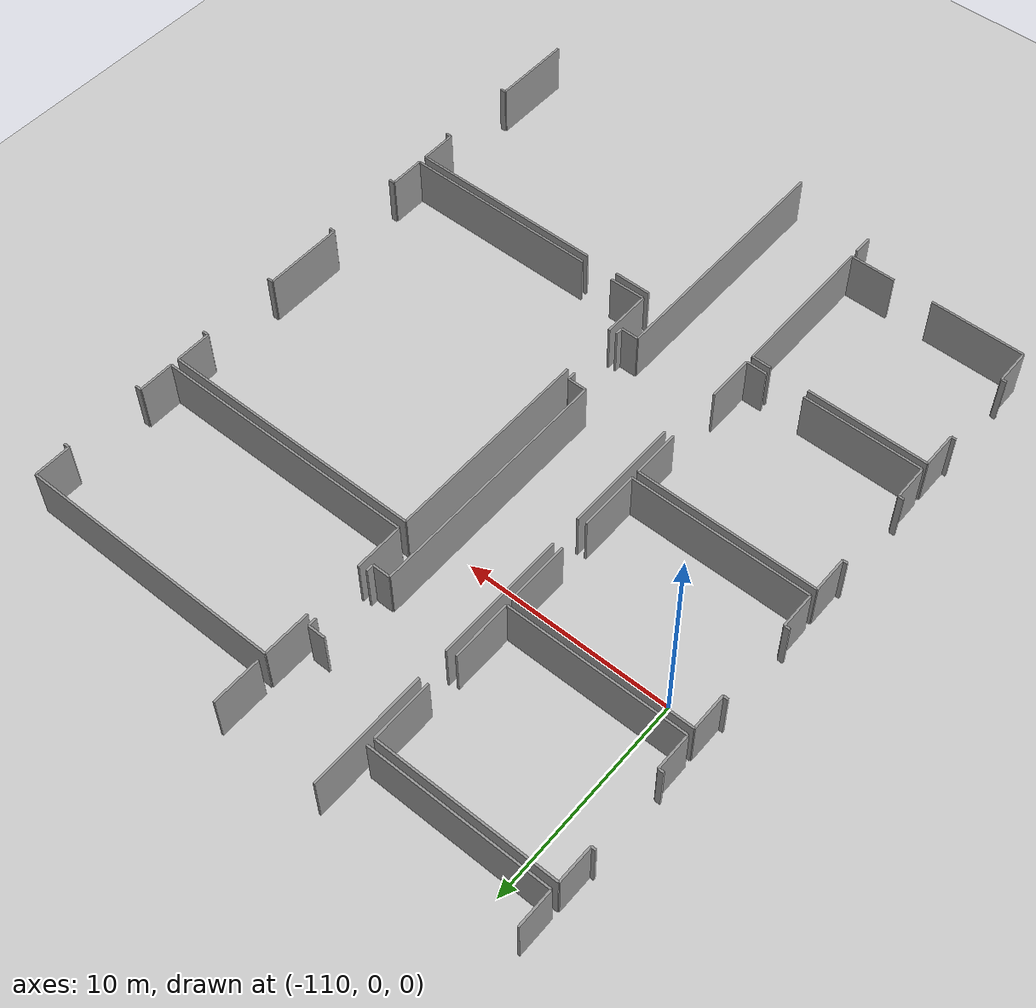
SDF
<sdf version="1.6">
 <world name="default">
  <model name="ground_plane">
   <static>1</static>
   <link name="link">
    <collision name="collision">
     <geometry><plane><normal>0 0 1</normal><size>100 100</size></plane></geometry>
     <surface><friction><ode><mu>100</mu><mu2>50</mu2></ode></friction></surface>
    </collision>
    <visual name="visual">
     <cast_shadows>0</cast_shadows>
     <geometry><plane><normal>0 0 1</normal><size>100 100</size></plane></geometry>
     <material>
      <script><uri>file://media/materials/scripts/gazebo.material</uri><name>Gazebo/Grey</name></script>
     </material>
    </visual>
   </link>
  </model>
  <model name="0510035520_A_40_1_103">
   <static>1</static>
   <link name="Wall_290">
    <collision name="Wall_290_Collision">
     <geometry><box><size>2.29947779519 0.1 2.5</size></box></geometry>
     <pose>1.1497388976 0 1.25 0 0 0</pose>
    </collision>
    <visual name="Wall_290_Visual">
     <pose>1.1497388976 0 1.25 0 0 0</pose>
     <geometry><box><size>2.29947779519 0.1 2.5</size></box></geometry>
     <material>
      <script><uri>file://media/materials/scripts/gazebo.material</uri><name>Gazebo/Grey</name></script>
      <ambient>1 1 1 1</ambient>
     </material>
    </visual>
    <pose>14.4148831543 -59.2805883211 0 0 0 1.57079632679</pose>
   </link>
   <link name="Wall_292">
    <collision name="Wall_292_Collision">
     <geometry><box><size>12.8610859068 0.1 2.5</size></box></geometry>
     <pose>6.43054295341 0 1.25 0 0 0</pose>
    </collision>
    <visual name="Wall_292_Visual">
     <pose>6.43054295341 0 1.25 0 0 0</pose>
     <geometry><box><size>12.8610859068 0.1 2.5</size></box></geometry>
     <material>
      <script><uri>file://media/materials/scripts/gazebo.material</uri><name>Gazebo/Grey</name></script>
      <ambient>1 1 1 1</ambient>
     </material>
    </visual>
    <pose>14.4240201522 -59.656474261 0 0 0 0.0</pose>
   </link>
   <link name="Wall_293">
    <collision name="Wall_293_Collision">
     <geometry><box><size>1.75658783891 0.1 2.5</size></box></geometry>
     <pose>0.878293919455 0 1.25 0 0 0</pose>
    </collision>
    <visual name="Wall_293_Visual">
     <pose>0.878293919455 0 1.25 0 0 0</pose>
     <geometry><box><size>1.75658783891 0.1 2.5</size></box></geometry>
     <material>
      <script><uri>file://media/materials/scripts/gazebo.material</uri><name>Gazebo/Grey</name></script>
      <ambient>1 1 1 1</ambient>
     </material>
    </visual>
    <pose>27.285106059 -59.656474261 0 0 0 -1.57079632679</pose>
   </link>
   <link name="Wall_294">
    <collision name="Wall_294_Collision">
     <geometry><box><size>0.27614037982 0.1 2.5</size></box></geometry>
     <pose>0.13807018991 0 1.25 0 0 0</pose>
    </collision>
    <visual name="Wall_294_Visual">
     <pose>0.13807018991 0 1.25 0 0 0</pose>
     <geometry><box><size>0.27614037982 0.1 2.5</size></box></geometry>
     <material>
      <script><uri>file://media/materials/scripts/gazebo.material</uri><name>Gazebo/Grey</name></script>
      <ambient>1 1 1 1</ambient>
     </material>
    </visual>
    <pose>27.285106059 -61.4130620999 0 0 0 0.0</pose>
   </link>
   <link name="Wall_295">
    <collision name="Wall_295_Collision">
     <geometry><box><size>0.305328011878 0.1 2.5</size></box></geometry>
     <pose>0.152664005939 0 1.25 0 0 0</pose>
    </collision>
    <visual name="Wall_295_Visual">
     <pose>0.152664005939 0 1.25 0 0 0</pose>
     <geometry><box><size>0.305328011878 0.1 2.5</size></box></geometry>
     <material>
      <script><uri>file://media/materials/scripts/gazebo.material</uri><name>Gazebo/Grey</name></script>
      <ambient>1 1 1 1</ambient>
     </material>
    </visual>
    <pose>27.5612464388 -65.3102454934 0 0 0 3.14159265359</pose>
   </link>
   <link name="Wall_296">
    <collision name="Wall_296_Collision">
     <geometry><box><size>1.71547134853 0.1 2.5</size></box></geometry>
     <pose>0.857735674266 0 1.25 0 0 0</pose>
    </collision>
    <visual name="Wall_296_Visual">
     <pose>0.857735674266 0 1.25 0 0 0</pose>
     <geometry><box><size>1.71547134853 0.1 2.5</size></box></geometry>
     <material>
      <script><uri>file://media/materials/scripts/gazebo.material</uri><name>Gazebo/Grey</name></script>
      <ambient>1 1 1 1</ambient>
     </material>
    </visual>
    <pose>27.2559184269 -65.3102454934 0 0 0 -1.57079632679</pose>
   </link>
   <link name="Wall_297">
    <collision name="Wall_297_Collision">
     <geometry><box><size>12.8443347441 0.1 2.5</size></box></geometry>
     <pose>6.42216737203 0 1.25 0 0 0</pose>
    </collision>
    <visual name="Wall_297_Visual">
     <pose>6.42216737203 0 1.25 0 0 0</pose>
     <geometry><box><size>12.8443347441 0.1 2.5</size></box></geometry>
     <material>
      <script><uri>file://media/materials/scripts/gazebo.material</uri><name>Gazebo/Grey</name></script>
      <ambient>1 1 1 1</ambient>
     </material>
    </visual>
    <pose>27.2559184269 -67.0257168419 0 0 0 3.14159265359</pose>
   </link>
   <link name="Wall_298">
    <collision name="Wall_298_Collision">
     <geometry><box><size>2.32054365137 0.1 2.5</size></box></geometry>
     <pose>1.16027182569 0 1.25 0 0 0</pose>
    </collision>
    <visual name="Wall_298_Visual">
     <pose>1.16027182569 0 1.25 0 0 0</pose>
     <geometry><box><size>2.32054365137 0.1 2.5</size></box></geometry>
     <material>
      <script><uri>file://media/materials/scripts/gazebo.material</uri><name>Gazebo/Grey</name></script>
      <ambient>1 1 1 1</ambient>
     </material>
    </visual>
    <pose>14.4115836828 -67.0257168419 0 0 0 1.57079632679</pose>
   </link>
   <link name="Wall_299">
    <collision name="Wall_299_Collision">
     <geometry><box><size>2.2418984422 0.1 2.5</size></box></geometry>
     <pose>1.1209492211 0 1.25 0 0 0</pose>
    </collision>
    <visual name="Wall_299_Visual">
     <pose>1.1209492211 0 1.25 0 0 0</pose>
     <geometry><box><size>2.2418984422 0.1 2.5</size></box></geometry>
     <material>
      <script><uri>file://media/materials/scripts/gazebo.material</uri><name>Gazebo/Grey</name></script>
      <ambient>1 1 1 1</ambient>
     </material>
    </visual>
    <pose>14.4115836828 -61.8983382085 0 0 0 1.56524900455</pose>
   </link>
   <link name="Wall_300">
    <collision name="Wall_300_Collision">
     <geometry><box><size>2.34440136801 0.1 2.5</size></box></geometry>
     <pose>1.17220068401 0 1.25 0 0 0</pose>
    </collision>
    <visual name="Wall_300_Visual">
     <pose>1.17220068401 0 1.25 0 0 0</pose>
     <geometry><box><size>2.34440136801 0.1 2.5</size></box></geometry>
     <material>
      <script><uri>file://media/materials/scripts/gazebo.material</uri><name>Gazebo/Grey</name></script>
      <ambient>1 1 1 1</ambient>
     </material>
    </visual>
    <pose>14.4148831543 -82.5398316001 0 0 0 1.57079632679</pose>
   </link>
   <link name="Wall_301">
    <collision name="Wall_301_Collision">
     <geometry><box><size>9.99689088267 0.1 2.5</size></box></geometry>
     <pose>4.99844544134 0 1.25 0 0 0</pose>
    </collision>
    <visual name="Wall_301_Visual">
     <pose>4.99844544134 0 1.25 0 0 0</pose>
     <geometry><box><size>9.99689088267 0.1 2.5</size></box></geometry>
     <material>
      <script><uri>file://media/materials/scripts/gazebo.material</uri><name>Gazebo/Grey</name></script>
      <ambient>1 1 1 1</ambient>
     </material>
    </visual>
    <pose>14.4148831543 -77.42184377 0 0 0 1.57079632679</pose>
   </link>
   <link name="Wall_302">
    <collision name="Wall_302_Collision">
     <geometry><box><size>12.8415428836 0.1 2.5</size></box></geometry>
     <pose>6.42077144181 0 1.25 0 0 0</pose>
    </collision>
    <visual name="Wall_302_Visual">
     <pose>6.42077144181 0 1.25 0 0 0</pose>
     <geometry><box><size>12.8415428836 0.1 2.5</size></box></geometry>
     <material>
      <script><uri>file://media/materials/scripts/gazebo.material</uri><name>Gazebo/Grey</name></script>
      <ambient>1 1 1 1</ambient>
     </material>
    </visual>
    <pose>14.4148831543 -67.4249528874 0 0 0 0.0</pose>
   </link>
   <link name="Wall_303">
    <collision name="Wall_303_Collision">
     <geometry><box><size>1.72257790242 0.1 2.5</size></box></geometry>
     <pose>0.861288951212 0 1.25 0 0 0</pose>
    </collision>
    <visual name="Wall_303_Visual">
     <pose>0.861288951212 0 1.25 0 0 0</pose>
     <geometry><box><size>1.72257790242 0.1 2.5</size></box></geometry>
     <material>
      <script><uri>file://media/materials/scripts/gazebo.material</uri><name>Gazebo/Grey</name></script>
      <ambient>1 1 1 1</ambient>
     </material>
    </visual>
    <pose>27.2564260379 -67.4249528874 0 0 0 -1.57079632679</pose>
   </link>
   <link name="Wall_304">
    <collision name="Wall_304_Collision">
     <geometry><box><size>0.301520929436 0.1 2.5</size></box></geometry>
     <pose>0.150760464718 0 1.25 0 0 0</pose>
    </collision>
    <visual name="Wall_304_Visual">
     <pose>0.150760464718 0 1.25 0 0 0</pose>
     <geometry><box><size>0.301520929436 0.1 2.5</size></box></geometry>
     <material>
      <script><uri>file://media/materials/scripts/gazebo.material</uri><name>Gazebo/Grey</name></script>
      <ambient>1 1 1 1</ambient>
     </material>
    </visual>
    <pose>27.2564260379 -69.1475307898 0 0 0 0.0</pose>
   </link>
   <link name="Wall_305">
    <collision name="Wall_305_Collision">
     <geometry><box><size>0.27284090837 0.1 2.5</size></box></geometry>
     <pose>0.136420454185 0 1.25 0 0 0</pose>
    </collision>
    <visual name="Wall_305_Visual">
     <pose>0.136420454185 0 1.25 0 0 0</pose>
     <geometry><box><size>0.27284090837 0.1 2.5</size></box></geometry>
     <material>
      <script><uri>file://media/materials/scripts/gazebo.material</uri><name>Gazebo/Grey</name></script>
      <ambient>1 1 1 1</ambient>
     </material>
    </visual>
    <pose>27.5579469673 -73.031770103 0 0 0 3.14159265359</pose>
   </link>
   <link name="Wall_306">
    <collision name="Wall_306_Collision">
     <geometry><box><size>3.85708212511 0.1 2.5</size></box></geometry>
     <pose>1.92854106256 0 1.25 0 0 0</pose>
    </collision>
    <visual name="Wall_306_Visual">
     <pose>1.92854106256 0 1.25 0 0 0</pose>
     <geometry><box><size>3.85708212511 0.1 2.5</size></box></geometry>
     <material>
      <script><uri>file://media/materials/scripts/gazebo.material</uri><name>Gazebo/Grey</name></script>
      <ambient>1 1 1 1</ambient>
     </material>
    </visual>
    <pose>27.285106059 -73.031770103 0 0 0 -1.57079632679</pose>
   </link>
   <link name="Wall_307">
    <collision name="Wall_307_Collision">
     <geometry><box><size>0.278170823789 0.1 2.5</size></box></geometry>
     <pose>0.139085411895 0 1.25 0 0 0</pose>
    </collision>
    <visual name="Wall_307_Visual">
     <pose>0.139085411895 0 1.25 0 0 0</pose>
     <geometry><box><size>0.278170823789 0.1 2.5</size></box></geometry>
     <material>
      <script><uri>file://media/materials/scripts/gazebo.material</uri><name>Gazebo/Grey</name></script>
      <ambient>1 1 1 1</ambient>
     </material>
    </visual>
    <pose>27.285106059 -76.8888522281 0 0 0 0.0</pose>
   </link>
   <link name="Wall_308">
    <collision name="Wall_308_Collision">
     <geometry><box><size>0.286292599666 0.1 2.5</size></box></geometry>
     <pose>0.143146299833 0 1.25 0 0 0</pose>
    </collision>
    <visual name="Wall_308_Visual">
     <pose>0.143146299833 0 1.25 0 0 0</pose>
     <geometry><box><size>0.286292599666 0.1 2.5</size></box></geometry>
     <material>
      <script><uri>file://media/materials/scripts/gazebo.material</uri><name>Gazebo/Grey</name></script>
      <ambient>1 1 1 1</ambient>
     </material>
    </visual>
    <pose>27.5632768828 -80.7870508436 0 0 0 3.14159265359</pose>
   </link>
   <link name="Wall_309">
    <collision name="Wall_309_Collision">
     <geometry><box><size>1.7175017925 0.1 2.5</size></box></geometry>
     <pose>0.858750896251 0 1.25 0 0 0</pose>
    </collision>
    <visual name="Wall_309_Visual">
     <pose>0.858750896251 0 1.25 0 0 0</pose>
     <geometry><box><size>1.7175017925 0.1 2.5</size></box></geometry>
     <material>
      <script><uri>file://media/materials/scripts/gazebo.material</uri><name>Gazebo/Grey</name></script>
      <ambient>1 1 1 1</ambient>
     </material>
    </visual>
    <pose>27.2769842831 -80.7870508436 0 0 0 -1.57079632679</pose>
   </link>
   <link name="Wall_310">
    <collision name="Wall_310_Collision">
     <geometry><box><size>9.55146223691 0.1 2.5</size></box></geometry>
     <pose>4.77573111846 0 1.25 0 0 0</pose>
    </collision>
    <visual name="Wall_310_Visual">
     <pose>4.77573111846 0 1.25 0 0 0</pose>
     <geometry><box><size>9.55146223691 0.1 2.5</size></box></geometry>
     <material>
      <script><uri>file://media/materials/scripts/gazebo.material</uri><name>Gazebo/Grey</name></script>
      <ambient>1 1 1 1</ambient>
     </material>
    </visual>
    <pose>27.2769842831 -82.5045526361 0 0 0 3.14159265359</pose>
   </link>
   <link name="Wall_311">
    <collision name="Wall_311_Collision">
     <geometry><box><size>1.72471539334 0.1 2.5</size></box></geometry>
     <pose>0.862357696668 0 1.25 0 0 0</pose>
    </collision>
    <visual name="Wall_311_Visual">
     <pose>0.862357696668 0 1.25 0 0 0</pose>
     <geometry><box><size>1.72471539334 0.1 2.5</size></box></geometry>
     <material>
      <script><uri>file://media/materials/scripts/gazebo.material</uri><name>Gazebo/Grey</name></script>
      <ambient>1 1 1 1</ambient>
     </material>
    </visual>
    <pose>16.1392376952 -82.5045526361 0 0 0 -3.12113627875</pose>
   </link>
   <link name="Wall_312">
    <collision name="Wall_312_Collision">
     <geometry><box><size>1.79389724684 0.1 2.5</size></box></geometry>
     <pose>0.896948623422 0 1.25 0 0 0</pose>
    </collision>
    <visual name="Wall_312_Visual">
     <pose>0.896948623422 0 1.25 0 0 0</pose>
     <geometry><box><size>1.79389724684 0.1 2.5</size></box></geometry>
     <material>
      <script><uri>file://media/materials/scripts/gazebo.material</uri><name>Gazebo/Grey</name></script>
      <ambient>1 1 1 1</ambient>
     </material>
    </visual>
    <pose>14.3958477421 -82.9053115145 0 0 0 0.0</pose>
   </link>
   <link name="Wall_313">
    <collision name="Wall_313_Collision">
     <geometry><box><size>9.51618327295 0.1 2.5</size></box></geometry>
     <pose>4.75809163647 0 1.25 0 0 0</pose>
    </collision>
    <visual name="Wall_313_Visual">
     <pose>4.75809163647 0 1.25 0 0 0</pose>
     <geometry><box><size>9.51618327295 0.1 2.5</size></box></geometry>
     <material>
      <script><uri>file://media/materials/scripts/gazebo.material</uri><name>Gazebo/Grey</name></script>
      <ambient>1 1 1 1</ambient>
     </material>
    </visual>
    <pose>17.7625776486 -82.9053115145 0 0 0 0.0</pose>
   </link>
   <link name="Wall_314">
    <collision name="Wall_314_Collision">
     <geometry><box><size>1.75176553448 0.1 2.5</size></box></geometry>
     <pose>0.875882767241 0 1.25 0 0 0</pose>
    </collision>
    <visual name="Wall_314_Visual">
     <pose>0.875882767241 0 1.25 0 0 0</pose>
     <geometry><box><size>1.75176553448 0.1 2.5</size></box></geometry>
     <material>
      <script><uri>file://media/materials/scripts/gazebo.material</uri><name>Gazebo/Grey</name></script>
      <ambient>1 1 1 1</ambient>
     </material>
    </visual>
    <pose>27.2787609216 -82.9053115145 0 0 0 -1.57079632679</pose>
   </link>
   <link name="Wall_315">
    <collision name="Wall_315_Collision">
     <geometry><box><size>0.294921986536 0.1 2.5</size></box></geometry>
     <pose>0.147460993268 0 1.25 0 0 0</pose>
    </collision>
    <visual name="Wall_315_Visual">
     <pose>0.147460993268 0 1.25 0 0 0</pose>
     <geometry><box><size>0.294921986536 0.1 2.5</size></box></geometry>
     <material>
      <script><uri>file://media/materials/scripts/gazebo.material</uri><name>Gazebo/Grey</name></script>
      <ambient>1 1 1 1</ambient>
     </material>
    </visual>
    <pose>27.2787609216 -84.657077049 0 0 0 0.0</pose>
   </link>
   <link name="Wall_316">
    <collision name="Wall_316_Collision">
     <geometry><box><size>0.283246933712 0.1 2.5</size></box></geometry>
     <pose>0.141623466856 0 1.25 0 0 0</pose>
    </collision>
    <visual name="Wall_316_Visual">
     <pose>0.141623466856 0 1.25 0 0 0</pose>
     <geometry><box><size>0.283246933712 0.1 2.5</size></box></geometry>
     <material>
      <script><uri>file://media/materials/scripts/gazebo.material</uri><name>Gazebo/Grey</name></script>
      <ambient>1 1 1 1</ambient>
     </material>
    </visual>
    <pose>27.5736829081 -88.519742895 0 0 0 3.14159265359</pose>
   </link>
   <link name="Wall_317">
    <collision name="Wall_317_Collision">
     <geometry><box><size>3.89134586709 0.1 2.5</size></box></geometry>
     <pose>1.94567293355 0 1.25 0 0 0</pose>
    </collision>
    <visual name="Wall_317_Visual">
     <pose>1.94567293355 0 1.25 0 0 0</pose>
     <geometry><box><size>3.89134586709 0.1 2.5</size></box></geometry>
     <material>
      <script><uri>file://media/materials/scripts/gazebo.material</uri><name>Gazebo/Grey</name></script>
      <ambient>1 1 1 1</ambient>
     </material>
    </visual>
    <pose>27.2904359744 -88.519742895 0 0 0 -1.57079632679</pose>
   </link>
   <link name="Wall_346">
    <collision name="Wall_346_Collision">
     <geometry><box><size>0.925882449984 0.1 2.5</size></box></geometry>
     <pose>0.462941224992 0 1.25 0 0 0</pose>
    </collision>
    <visual name="Wall_346_Visual">
     <pose>0.462941224992 0 1.25 0 0 0</pose>
     <geometry><box><size>0.925882449984 0.1 2.5</size></box></geometry>
     <material>
      <script><uri>file://media/materials/scripts/gazebo.material</uri><name>Gazebo/Grey</name></script>
      <ambient>1 1 1 1</ambient>
     </material>
    </visual>
    <pose>8.90958813713 -90.6636379211 0 0 0 -1.57079632679</pose>
   </link>
   <link name="Wall_349">
    <collision name="Wall_349_Collision">
     <geometry><box><size>1.73146109479 0.1 2.5</size></box></geometry>
     <pose>0.865730547395 0 1.25 0 0 0</pose>
    </collision>
    <visual name="Wall_349_Visual">
     <pose>0.865730547395 0 1.25 0 0 0</pose>
     <geometry><box><size>1.73146109479 0.1 2.5</size></box></geometry>
     <material>
      <script><uri>file://media/materials/scripts/gazebo.material</uri><name>Gazebo/Grey</name></script>
      <ambient>1 1 1 1</ambient>
     </material>
    </visual>
    <pose>0.249744608219 -90.2621176262 0 0 0 1.57079632679</pose>
   </link>
   <link name="Wall_350">
    <collision name="Wall_350_Collision">
     <geometry><box><size>0.225125475092 0.1 2.5</size></box></geometry>
     <pose>0.112562737546 0 1.25 0 0 0</pose>
    </collision>
    <visual name="Wall_350_Visual">
     <pose>0.112562737546 0 1.25 0 0 0</pose>
     <geometry><box><size>0.225125475092 0.1 2.5</size></box></geometry>
     <material>
      <script><uri>file://media/materials/scripts/gazebo.material</uri><name>Gazebo/Grey</name></script>
      <ambient>1 1 1 1</ambient>
     </material>
    </visual>
    <pose>0.249744608219 -88.5306565314 0 0 0 3.14159265359</pose>
   </link>
   <link name="Wall_351">
    <collision name="Wall_351_Collision">
     <geometry><box><size>0.22131839265 0.1 2.5</size></box></geometry>
     <pose>0.110659196325 0 1.25 0 0 0</pose>
    </collision>
    <visual name="Wall_351_Visual">
     <pose>0.110659196325 0 1.25 0 0 0</pose>
     <geometry><box><size>0.22131839265 0.1 2.5</size></box></geometry>
     <material>
      <script><uri>file://media/materials/scripts/gazebo.material</uri><name>Gazebo/Grey</name></script>
      <ambient>1 1 1 1</ambient>
     </material>
    </visual>
    <pose>0.0246191331273 -84.6542851885 0 0 0 0.0</pose>
   </link>
   <link name="Wall_352">
    <collision name="Wall_352_Collision">
     <geometry><box><size>1.75404978395 0.1 2.5</size></box></geometry>
     <pose>0.877024891974 0 1.25 0 0 0</pose>
    </collision>
    <visual name="Wall_352_Visual">
     <pose>0.877024891974 0 1.25 0 0 0</pose>
     <geometry><box><size>1.75404978395 0.1 2.5</size></box></geometry>
     <material>
      <script><uri>file://media/materials/scripts/gazebo.material</uri><name>Gazebo/Grey</name></script>
      <ambient>1 1 1 1</ambient>
     </material>
    </visual>
    <pose>0.245937525777 -84.6542851885 0 0 0 1.57079632679</pose>
   </link>
   <link name="Wall_353">
    <collision name="Wall_353_Collision">
     <geometry><box><size>5.82788180278 0.1 2.5</size></box></geometry>
     <pose>2.91394090139 0 1.25 0 0 0</pose>
    </collision>
    <visual name="Wall_353_Visual">
     <pose>2.91394090139 0 1.25 0 0 0</pose>
     <geometry><box><size>5.82788180278 0.1 2.5</size></box></geometry>
     <material>
      <script><uri>file://media/materials/scripts/gazebo.material</uri><name>Gazebo/Grey</name></script>
      <ambient>1 1 1 1</ambient>
     </material>
    </visual>
    <pose>0.245937525777 -82.9002354046 0 0 0 0.0</pose>
   </link>
   <link name="Wall_354">
    <collision name="Wall_354_Collision">
     <geometry><box><size>0.943648834716 0.1 2.5</size></box></geometry>
     <pose>0.471824417358 0 1.25 0 0 0</pose>
    </collision>
    <visual name="Wall_354_Visual">
     <pose>0.471824417358 0 1.25 0 0 0</pose>
     <geometry><box><size>0.943648834716 0.1 2.5</size></box></geometry>
     <material>
      <script><uri>file://media/materials/scripts/gazebo.material</uri><name>Gazebo/Grey</name></script>
      <ambient>1 1 1 1</ambient>
     </material>
    </visual>
    <pose>7.95680230455 -82.9002354046 0 0 0 0.0</pose>
   </link>
   <link name="Wall_355">
    <collision name="Wall_355_Collision">
     <geometry><box><size>7.38066382828 0.1 2.5</size></box></geometry>
     <pose>3.69033191414 0 1.25 0 0 0</pose>
    </collision>
    <visual name="Wall_355_Visual">
     <pose>3.69033191414 0 1.25 0 0 0</pose>
     <geometry><box><size>7.38066382828 0.1 2.5</size></box></geometry>
     <material>
      <script><uri>file://media/materials/scripts/gazebo.material</uri><name>Gazebo/Grey</name></script>
      <ambient>1 1 1 1</ambient>
     </material>
    </visual>
    <pose>8.90045113927 -82.9002354046 0 0 0 -1.57079632679</pose>
   </link>
   <link name="Wall_356">
    <collision name="Wall_356_Collision">
     <geometry><box><size>2.17587451856 0.1 2.5</size></box></geometry>
     <pose>1.08793725928 0 1.25 0 0 0</pose>
    </collision>
    <visual name="Wall_356_Visual">
     <pose>1.08793725928 0 1.25 0 0 0</pose>
     <geometry><box><size>2.17587451856 0.1 2.5</size></box></geometry>
     <material>
      <script><uri>file://media/materials/scripts/gazebo.material</uri><name>Gazebo/Grey</name></script>
      <ambient>1 1 1 1</ambient>
     </material>
    </visual>
    <pose>8.90045113927 -90.2808992329 0 0 0 3.14159265359</pose>
   </link>
   <link name="Wall_357">
    <collision name="Wall_357_Collision">
     <geometry><box><size>4.52412195451 0.1 2.5</size></box></geometry>
     <pose>2.26206097726 0 1.25 0 0 0</pose>
    </collision>
    <visual name="Wall_357_Visual">
     <pose>2.26206097726 0 1.25 0 0 0</pose>
     <geometry><box><size>4.52412195451 0.1 2.5</size></box></geometry>
     <material>
      <script><uri>file://media/materials/scripts/gazebo.material</uri><name>Gazebo/Grey</name></script>
      <ambient>1 1 1 1</ambient>
     </material>
    </visual>
    <pose>4.77382757724 -90.2808992329 0 0 0 3.13744120479</pose>
   </link>
   <link name="Wall_358">
    <collision name="Wall_358_Collision">
     <geometry><box><size>1.72181648594 0.1 2.5</size></box></geometry>
     <pose>0.860908242968 0 1.25 0 0 0</pose>
    </collision>
    <visual name="Wall_358_Visual">
     <pose>0.860908242968 0 1.25 0 0 0</pose>
     <geometry><box><size>1.72181648594 0.1 2.5</size></box></geometry>
     <material>
      <script><uri>file://media/materials/scripts/gazebo.material</uri><name>Gazebo/Grey</name></script>
      <ambient>1 1 1 1</ambient>
     </material>
    </visual>
    <pose>0.251775052189 -82.5301869912 0 0 0 1.57079632679</pose>
   </link>
   <link name="Wall_359">
    <collision name="Wall_359_Collision">
     <geometry><box><size>0.244668498296 0.1 2.5</size></box></geometry>
     <pose>0.122334249148 0 1.25 0 0 0</pose>
    </collision>
    <visual name="Wall_359_Visual">
     <pose>0.122334249148 0 1.25 0 0 0</pose>
     <geometry><box><size>0.244668498296 0.1 2.5</size></box></geometry>
     <material>
      <script><uri>file://media/materials/scripts/gazebo.material</uri><name>Gazebo/Grey</name></script>
      <ambient>1 1 1 1</ambient>
     </material>
    </visual>
    <pose>0.251775052189 -80.8083705053 0 0 0 3.14159265359</pose>
   </link>
   <link name="Wall_360">
    <collision name="Wall_360_Collision">
     <geometry><box><size>0.228171141046 0.1 2.5</size></box></geometry>
     <pose>0.114085570523 0 1.25 0 0 0</pose>
    </collision>
    <visual name="Wall_360_Visual">
     <pose>0.114085570523 0 1.25 0 0 0</pose>
     <geometry><box><size>0.228171141046 0.1 2.5</size></box></geometry>
     <material>
      <script><uri>file://media/materials/scripts/gazebo.material</uri><name>Gazebo/Grey</name></script>
      <ambient>1 1 1 1</ambient>
     </material>
    </visual>
    <pose>0.00710655389243 -76.8883446171 0 0 0 0.0</pose>
   </link>
   <link name="Wall_361">
    <collision name="Wall_361_Collision">
     <geometry><box><size>1.72917684532 0.1 2.5</size></box></geometry>
     <pose>0.864588422662 0 1.25 0 0 0</pose>
    </collision>
    <visual name="Wall_361_Visual">
     <pose>0.864588422662 0 1.25 0 0 0</pose>
     <geometry><box><size>1.72917684532 0.1 2.5</size></box></geometry>
     <material>
      <script><uri>file://media/materials/scripts/gazebo.material</uri><name>Gazebo/Grey</name></script>
      <ambient>1 1 1 1</ambient>
     </material>
    </visual>
    <pose>0.235277694938 -76.8883446171 0 0 0 1.57079632679</pose>
   </link>
   <link name="Wall_362">
    <collision name="Wall_362_Collision">
     <geometry><box><size>8.68167080158 0.1 2.5</size></box></geometry>
     <pose>4.34083540079 0 1.25 0 0 0</pose>
    </collision>
    <visual name="Wall_362_Visual">
     <pose>4.34083540079 0 1.25 0 0 0</pose>
     <geometry><box><size>8.68167080158 0.1 2.5</size></box></geometry>
     <material>
      <script><uri>file://media/materials/scripts/gazebo.material</uri><name>Gazebo/Grey</name></script>
      <ambient>1 1 1 1</ambient>
     </material>
    </visual>
    <pose>0.235277694938 -75.1591677718 0 0 0 0.0</pose>
   </link>
   <link name="Wall_363">
    <collision name="Wall_363_Collision">
     <geometry><box><size>2.32688878878 0.1 2.5</size></box></geometry>
     <pose>1.16344439439 0 1.25 0 0 0</pose>
    </collision>
    <visual name="Wall_363_Visual">
     <pose>1.16344439439 0 1.25 0 0 0</pose>
     <geometry><box><size>2.32688878878 0.1 2.5</size></box></geometry>
     <material>
      <script><uri>file://media/materials/scripts/gazebo.material</uri><name>Gazebo/Grey</name></script>
      <ambient>1 1 1 1</ambient>
     </material>
    </visual>
    <pose>8.91694849652 -75.1591677718 0 0 0 -1.57079632679</pose>
   </link>
   <link name="Wall_364">
    <collision name="Wall_364_Collision">
     <geometry><box><size>2.29084840832 0.1 2.5</size></box></geometry>
     <pose>1.14542420416 0 1.25 0 0 0</pose>
    </collision>
    <visual name="Wall_364_Visual">
     <pose>1.14542420416 0 1.25 0 0 0</pose>
     <geometry><box><size>2.29084840832 0.1 2.5</size></box></geometry>
     <material>
      <script><uri>file://media/materials/scripts/gazebo.material</uri><name>Gazebo/Grey</name></script>
      <ambient>1 1 1 1</ambient>
     </material>
    </visual>
    <pose>8.91694849652 -80.2329934455 0 0 0 -1.57079632679</pose>
   </link>
   <link name="Wall_365">
    <collision name="Wall_365_Collision">
     <geometry><box><size>0.998724627382 0.1 2.5</size></box></geometry>
     <pose>0.499362313691 0 1.25 0 0 0</pose>
    </collision>
    <visual name="Wall_365_Visual">
     <pose>0.499362313691 0 1.25 0 0 0</pose>
     <geometry><box><size>0.998724627382 0.1 2.5</size></box></geometry>
     <material>
      <script><uri>file://media/materials/scripts/gazebo.material</uri><name>Gazebo/Grey</name></script>
      <ambient>1 1 1 1</ambient>
     </material>
    </visual>
    <pose>8.91694849652 -82.5238418538 0 0 0 3.14159265359</pose>
   </link>
   <link name="Wall_366">
    <collision name="Wall_366_Collision">
     <geometry><box><size>5.77255569188 0.1 2.5</size></box></geometry>
     <pose>2.88627784594 0 1.25 0 0 0</pose>
    </collision>
    <visual name="Wall_366_Visual">
     <pose>2.88627784594 0 1.25 0 0 0</pose>
     <geometry><box><size>5.77255569188 0.1 2.5</size></box></geometry>
     <material>
      <script><uri>file://media/materials/scripts/gazebo.material</uri><name>Gazebo/Grey</name></script>
      <ambient>1 1 1 1</ambient>
     </material>
    </visual>
    <pose>6.02432725681 -82.5238418538 0 0 0 -3.14049346304</pose>
   </link>
   <link name="Wall_367">
    <collision name="Wall_367_Collision">
     <geometry><box><size>1.72866923433 0.1 2.5</size></box></geometry>
     <pose>0.864334617166 0 1.25 0 0 0</pose>
    </collision>
    <visual name="Wall_367_Visual">
     <pose>0.864334617166 0 1.25 0 0 0</pose>
     <geometry><box><size>1.72866923433 0.1 2.5</size></box></geometry>
     <material>
      <script><uri>file://media/materials/scripts/gazebo.material</uri><name>Gazebo/Grey</name></script>
      <ambient>1 1 1 1</ambient>
     </material>
    </visual>
    <pose>0.260404439058 -74.7751600561 0 0 0 1.57079632679</pose>
   </link>
   <link name="Wall_368">
    <collision name="Wall_368_Collision">
     <geometry><box><size>0.253805496158 0.1 2.5</size></box></geometry>
     <pose>0.126902748079 0 1.25 0 0 0</pose>
    </collision>
    <visual name="Wall_368_Visual">
     <pose>0.126902748079 0 1.25 0 0 0</pose>
     <geometry><box><size>0.253805496158 0.1 2.5</size></box></geometry>
     <material>
      <script><uri>file://media/materials/scripts/gazebo.material</uri><name>Gazebo/Grey</name></script>
      <ambient>1 1 1 1</ambient>
     </material>
    </visual>
    <pose>0.260404439058 -73.0464908218 0 0 0 3.14159265359</pose>
   </link>
   <link name="Wall_369">
    <collision name="Wall_369_Collision">
     <geometry><box><size>0.237054333412 0.1 2.5</size></box></geometry>
     <pose>0.118527166706 0 1.25 0 0 0</pose>
    </collision>
    <visual name="Wall_369_Visual">
     <pose>0.118527166706 0 1.25 0 0 0</pose>
     <geometry><box><size>0.237054333412 0.1 2.5</size></box></geometry>
     <material>
      <script><uri>file://media/materials/scripts/gazebo.material</uri><name>Gazebo/Grey</name></script>
      <ambient>1 1 1 1</ambient>
     </material>
    </visual>
    <pose>0.0065989429001 -69.1498150392 0 0 0 0.0</pose>
   </link>
   <link name="Wall_370">
    <collision name="Wall_370_Collision">
     <geometry><box><size>1.74643561906 0.1 2.5</size></box></geometry>
     <pose>0.873217809532 0 1.25 0 0 0</pose>
    </collision>
    <visual name="Wall_370_Visual">
     <pose>0.873217809532 0 1.25 0 0 0</pose>
     <geometry><box><size>1.74643561906 0.1 2.5</size></box></geometry>
     <material>
      <script><uri>file://media/materials/scripts/gazebo.material</uri><name>Gazebo/Grey</name></script>
      <ambient>1 1 1 1</ambient>
     </material>
    </visual>
    <pose>0.243653276312 -69.1498150392 0 0 0 1.57079632679</pose>
   </link>
   <link name="Wall_371">
    <collision name="Wall_371_Collision">
     <geometry><box><size>8.67532566418 0.1 2.5</size></box></geometry>
     <pose>4.33766283209 0 1.25 0 0 0</pose>
    </collision>
    <visual name="Wall_371_Visual">
     <pose>4.33766283209 0 1.25 0 0 0</pose>
     <geometry><box><size>8.67532566418 0.1 2.5</size></box></geometry>
     <material>
      <script><uri>file://media/materials/scripts/gazebo.material</uri><name>Gazebo/Grey</name></script>
      <ambient>1 1 1 1</ambient>
     </material>
    </visual>
    <pose>0.243653276312 -67.4033794202 0 0 0 0.0</pose>
   </link>
   <link name="Wall_372">
    <collision name="Wall_372_Collision">
     <geometry><box><size>2.99820432611 0.1 2.5</size></box></geometry>
     <pose>1.49910216306 0 1.25 0 0 0</pose>
    </collision>
    <visual name="Wall_372_Visual">
     <pose>1.49910216306 0 1.25 0 0 0</pose>
     <geometry><box><size>2.99820432611 0.1 2.5</size></box></geometry>
     <material>
      <script><uri>file://media/materials/scripts/gazebo.material</uri><name>Gazebo/Grey</name></script>
      <ambient>1 1 1 1</ambient>
     </material>
    </visual>
    <pose>8.91897894049 -67.4033794202 0 0 0 -1.57079632679</pose>
   </link>
   <link name="Wall_373">
    <collision name="Wall_373_Collision">
     <geometry><box><size>2.89312885071 0.1 2.5</size></box></geometry>
     <pose>1.44656442535 0 1.25 0 0 0</pose>
    </collision>
    <visual name="Wall_373_Visual">
     <pose>1.44656442535 0 1.25 0 0 0</pose>
     <geometry><box><size>2.89312885071 0.1 2.5</size></box></geometry>
     <material>
      <script><uri>file://media/materials/scripts/gazebo.material</uri><name>Gazebo/Grey</name></script>
      <ambient>1 1 1 1</ambient>
     </material>
    </visual>
    <pose>8.91897894049 -71.8764474845 0 0 0 -1.57079632679</pose>
   </link>
   <link name="Wall_374">
    <collision name="Wall_374_Collision">
     <geometry><box><size>8.65857630184 0.1 2.5</size></box></geometry>
     <pose>4.32928815092 0 1.25 0 0 0</pose>
    </collision>
    <visual name="Wall_374_Visual">
     <pose>4.32928815092 0 1.25 0 0 0</pose>
     <geometry><box><size>8.65857630184 0.1 2.5</size></box></geometry>
     <material>
      <script><uri>file://media/materials/scripts/gazebo.material</uri><name>Gazebo/Grey</name></script>
      <ambient>1 1 1 1</ambient>
     </material>
    </visual>
    <pose>8.91897894049 -74.7695763352 0 0 0 -3.14094777606</pose>
   </link>
   <link name="Wall_375">
    <collision name="Wall_375_Collision">
     <geometry><box><size>8.65121414204 0.1 2.5</size></box></geometry>
     <pose>4.32560707102 0 1.25 0 0 0</pose>
    </collision>
    <visual name="Wall_375_Visual">
     <pose>4.32560707102 0 1.25 0 0 0</pose>
     <geometry><box><size>8.65121414204 0.1 2.5</size></box></geometry>
     <material>
      <script><uri>file://media/materials/scripts/gazebo.material</uri><name>Gazebo/Grey</name></script>
      <ambient>1 1 1 1</ambient>
     </material>
    </visual>
    <pose>0.239338582877 -59.6689107303 0 0 0 0.0</pose>
   </link>
   <link name="Wall_376">
    <collision name="Wall_376_Collision">
     <geometry><box><size>2.93119967513 0.1 2.5</size></box></geometry>
     <pose>1.46559983756 0 1.25 0 0 0</pose>
    </collision>
    <visual name="Wall_376_Visual">
     <pose>1.46559983756 0 1.25 0 0 0</pose>
     <geometry><box><size>2.93119967513 0.1 2.5</size></box></geometry>
     <material>
      <script><uri>file://media/materials/scripts/gazebo.material</uri><name>Gazebo/Grey</name></script>
      <ambient>1 1 1 1</ambient>
     </material>
    </visual>
    <pose>8.89055272492 -59.6689107303 0 0 0 -1.57079632679</pose>
   </link>
   <link name="Wall_377">
    <collision name="Wall_377_Collision">
     <geometry><box><size>2.90048921009 0.1 2.5</size></box></geometry>
     <pose>1.45024460505 0 1.25 0 0 0</pose>
    </collision>
    <visual name="Wall_377_Visual">
     <pose>1.45024460505 0 1.25 0 0 0</pose>
     <geometry><box><size>2.90048921009 0.1 2.5</size></box></geometry>
     <material>
      <script><uri>file://media/materials/scripts/gazebo.material</uri><name>Gazebo/Grey</name></script>
      <ambient>1 1 1 1</ambient>
     </material>
    </visual>
    <pose>8.89055272492 -64.1371564901 0 0 0 -1.57079632679</pose>
   </link>
   <link name="Wall_378">
    <collision name="Wall_378_Collision">
     <geometry><box><size>8.63014828586 0.1 2.5</size></box></geometry>
     <pose>4.31507414293 0 1.25 0 0 0</pose>
    </collision>
    <visual name="Wall_378_Visual">
     <pose>4.31507414293 0 1.25 0 0 0</pose>
     <geometry><box><size>8.63014828586 0.1 2.5</size></box></geometry>
     <material>
      <script><uri>file://media/materials/scripts/gazebo.material</uri><name>Gazebo/Grey</name></script>
      <ambient>1 1 1 1</ambient>
     </material>
    </visual>
    <pose>8.89055272492 -67.0376457002 0 0 0 3.14159265359</pose>
   </link>
   <link name="Wall_379">
    <collision name="Wall_379_Collision">
     <geometry><box><size>1.74922747952 0.1 2.5</size></box></geometry>
     <pose>0.874613739761 0 1.25 0 0 0</pose>
    </collision>
    <visual name="Wall_379_Visual">
     <pose>0.874613739761 0 1.25 0 0 0</pose>
     <geometry><box><size>1.74922747952 0.1 2.5</size></box></geometry>
     <material>
      <script><uri>file://media/materials/scripts/gazebo.material</uri><name>Gazebo/Grey</name></script>
      <ambient>1 1 1 1</ambient>
     </material>
    </visual>
    <pose>0.260404439058 -67.0376457002 0 0 0 1.57079632679</pose>
   </link>
   <link name="Wall_380">
    <collision name="Wall_380_Collision">
     <geometry><box><size>0.249744608219 0.1 2.5</size></box></geometry>
     <pose>0.12487230411 0 1.25 0 0 0</pose>
    </collision>
    <visual name="Wall_380_Visual">
     <pose>0.12487230411 0 1.25 0 0 0</pose>
     <geometry><box><size>0.249744608219 0.1 2.5</size></box></geometry>
     <material>
      <script><uri>file://media/materials/scripts/gazebo.material</uri><name>Gazebo/Grey</name></script>
      <ambient>1 1 1 1</ambient>
     </material>
    </visual>
    <pose>0.260404439058 -65.2884182207 0 0 0 3.14159265359</pose>
   </link>
   <link name="Wall_381">
    <collision name="Wall_381_Collision">
     <geometry><box><size>0.21598847723 0.1 2.5</size></box></geometry>
     <pose>0.107994238615 0 1.25 0 0 0</pose>
    </collision>
    <visual name="Wall_381_Visual">
     <pose>0.107994238615 0 1.25 0 0 0</pose>
     <geometry><box><size>0.21598847723 0.1 2.5</size></box></geometry>
     <material>
      <script><uri>file://media/materials/scripts/gazebo.material</uri><name>Gazebo/Grey</name></script>
      <ambient>1 1 1 1</ambient>
     </material>
    </visual>
    <pose>0.0106598308386 -61.4178844043 0 0 0 0.0</pose>
   </link>
   <link name="Wall_382">
    <collision name="Wall_382_Collision">
     <geometry><box><size>1.74901971273 0.1 2.5</size></box></geometry>
     <pose>0.874509856363 0 1.25 0 0 0</pose>
    </collision>
    <visual name="Wall_382_Visual">
     <pose>0.874509856363 0 1.25 0 0 0</pose>
     <geometry><box><size>1.74901971273 0.1 2.5</size></box></geometry>
     <material>
      <script><uri>file://media/materials/scripts/gazebo.material</uri><name>Gazebo/Grey</name></script>
      <ambient>1 1 1 1</ambient>
     </material>
    </visual>
    <pose>0.226648308069 -61.4178844043 0 0 0 1.56354061317</pose>
   </link>
   <link name="Wall_386">
    <collision name="Wall_386_Collision">
     <geometry><box><size>8.65172175303 0.1 2.5</size></box></geometry>
     <pose>4.32586087652 0 1.25 0 0 0</pose>
    </collision>
    <visual name="Wall_386_Visual">
     <pose>4.32586087652 0 1.25 0 0 0</pose>
     <geometry><box><size>8.65172175303 0.1 2.5</size></box></geometry>
     <material>
      <script><uri>file://media/materials/scripts/gazebo.material</uri><name>Gazebo/Grey</name></script>
      <ambient>1 1 1 1</ambient>
     </material>
    </visual>
    <pose>8.92227841194 -59.3011465663 0 0 0 3.14159265359</pose>
   </link>
   <link name="Wall_387">
    <collision name="Wall_387_Collision">
     <geometry><box><size>1.76750147524 0.1 2.5</size></box></geometry>
     <pose>0.883750737622 0 1.25 0 0 0</pose>
    </collision>
    <visual name="Wall_387_Visual">
     <pose>0.883750737622 0 1.25 0 0 0</pose>
     <geometry><box><size>1.76750147524 0.1 2.5</size></box></geometry>
     <material>
      <script><uri>file://media/materials/scripts/gazebo.material</uri><name>Gazebo/Grey</name></script>
      <ambient>1 1 1 1</ambient>
     </material>
    </visual>
    <pose>0.270556658904 -59.3011465663 0 0 0 1.57079632679</pose>
   </link>
   <link name="Wall_399">
    <collision name="Wall_399_Collision">
     <geometry><box><size>5.61214713105 0.1 2.5</size></box></geometry>
     <pose>2.80607356552 0 1.25 0 0 0</pose>
    </collision>
    <visual name="Wall_399_Visual">
     <pose>2.80607356552 0 1.25 0 0 0</pose>
     <geometry><box><size>5.61214713105 0.1 2.5</size></box></geometry>
     <material>
      <script><uri>file://media/materials/scripts/gazebo.material</uri><name>Gazebo/Grey</name></script>
      <ambient>1 1 1 1</ambient>
     </material>
    </visual>
    <pose>9.31237745953 -77.4302193514 0 0 0 1.57079632679</pose>
   </link>
   <link name="Wall_400">
    <collision name="Wall_400_Collision">
     <geometry><box><size>6.29996002563 0.1 2.5</size></box></geometry>
     <pose>3.14998001282 0 1.25 0 0 0</pose>
    </collision>
    <visual name="Wall_400_Visual">
     <pose>3.14998001282 0 1.25 0 0 0</pose>
     <geometry><box><size>6.29996002563 0.1 2.5</size></box></geometry>
     <material>
      <script><uri>file://media/materials/scripts/gazebo.material</uri><name>Gazebo/Grey</name></script>
      <ambient>1 1 1 1</ambient>
     </material>
    </visual>
    <pose>9.31237745953 -70.3399090107 0 0 0 1.57079632679</pose>
   </link>
   <link name="Wall_401">
    <collision name="Wall_401_Collision">
     <geometry><box><size>5.60707102112 0.1 2.5</size></box></geometry>
     <pose>2.80353551056 0 1.25 0 0 0</pose>
    </collision>
    <visual name="Wall_401_Visual">
     <pose>2.80353551056 0 1.25 0 0 0</pose>
     <geometry><box><size>5.60707102112 0.1 2.5</size></box></geometry>
     <material>
      <script><uri>file://media/materials/scripts/gazebo.material</uri><name>Gazebo/Grey</name></script>
      <ambient>1 1 1 1</ambient>
     </material>
    </visual>
    <pose>9.31237745953 -62.5671156909 0 0 0 1.57079632679</pose>
   </link>
   <link name="Wall_418">
    <collision name="Wall_418_Collision">
     <geometry><box><size>0.83502008236 0.1 2.5</size></box></geometry>
     <pose>0.41751004118 0 1.25 0 0 0</pose>
    </collision>
    <visual name="Wall_418_Visual">
     <pose>0.41751004118 0 1.25 0 0 0</pose>
     <geometry><box><size>0.83502008236 0.1 2.5</size></box></geometry>
     <material>
      <script><uri>file://media/materials/scripts/gazebo.material</uri><name>Gazebo/Grey</name></script>
      <ambient>1 1 1 1</ambient>
     </material>
    </visual>
    <pose>13.1907792463 -61.5668682305 0 0 0 0.0</pose>
   </link>
   <link name="Wall_419">
    <collision name="Wall_419_Collision">
     <geometry><box><size>0.40431215538 0.1 2.5</size></box></geometry>
     <pose>0.20215607769 0 1.25 0 0 0</pose>
    </collision>
    <visual name="Wall_419_Visual">
     <pose>0.20215607769 0 1.25 0 0 0</pose>
     <geometry><box><size>0.40431215538 0.1 2.5</size></box></geometry>
     <material>
      <script><uri>file://media/materials/scripts/gazebo.material</uri><name>Gazebo/Grey</name></script>
      <ambient>1 1 1 1</ambient>
     </material>
    </visual>
    <pose>14.0257993287 -61.5668682305 0 0 0 -1.57079632679</pose>
   </link>
   <link name="Wall_420">
    <collision name="Wall_420_Collision">
     <geometry><box><size>0.367764163933 0.1 2.5</size></box></geometry>
     <pose>0.183882081966 0 1.25 0 0 0</pose>
    </collision>
    <visual name="Wall_420_Visual">
     <pose>0.183882081966 0 1.25 0 0 0</pose>
     <geometry><box><size>0.367764163933 0.1 2.5</size></box></geometry>
     <material>
      <script><uri>file://media/materials/scripts/gazebo.material</uri><name>Gazebo/Grey</name></script>
      <ambient>1 1 1 1</ambient>
     </material>
    </visual>
    <pose>14.0257993287 -64.7556804843 0 0 0 -1.57079632679</pose>
   </link>
   <link name="Wall_421">
    <collision name="Wall_421_Collision">
     <geometry><box><size>0.87334471228 0.1 2.5</size></box></geometry>
     <pose>0.43667235614 0 1.25 0 0 0</pose>
    </collision>
    <visual name="Wall_421_Visual">
     <pose>0.43667235614 0 1.25 0 0 0</pose>
     <geometry><box><size>0.87334471228 0.1 2.5</size></box></geometry>
     <material>
      <script><uri>file://media/materials/scripts/gazebo.material</uri><name>Gazebo/Grey</name></script>
      <ambient>1 1 1 1</ambient>
     </material>
    </visual>
    <pose>14.0257993287 -65.1234446482 0 0 0 3.14159265359</pose>
   </link>
   <link name="Wall_422">
    <collision name="Wall_422_Collision">
     <geometry><box><size>11.9331730129 0.1 2.5</size></box></geometry>
     <pose>5.96658650643 0 1.25 0 0 0</pose>
    </collision>
    <visual name="Wall_422_Visual">
     <pose>5.96658650643 0 1.25 0 0 0</pose>
     <geometry><box><size>11.9331730129 0.1 2.5</size></box></geometry>
     <material>
      <script><uri>file://media/materials/scripts/gazebo.material</uri><name>Gazebo/Grey</name></script>
      <ambient>1 1 1 1</ambient>
     </material>
    </visual>
    <pose>13.1524546164 -65.1234446482 0 0 0 -1.57079632679</pose>
   </link>
   <link name="Wall_423">
    <collision name="Wall_423_Collision">
     <geometry><box><size>0.905831815788 0.1 2.5</size></box></geometry>
     <pose>0.452915907894 0 1.25 0 0 0</pose>
    </collision>
    <visual name="Wall_423_Visual">
     <pose>0.452915907894 0 1.25 0 0 0</pose>
     <geometry><box><size>0.905831815788 0.1 2.5</size></box></geometry>
     <material>
      <script><uri>file://media/materials/scripts/gazebo.material</uri><name>Gazebo/Grey</name></script>
      <ambient>1 1 1 1</ambient>
     </material>
    </visual>
    <pose>13.1524546164 -77.0566176611 0 0 0 0.0</pose>
   </link>
   <link name="Wall_424">
    <collision name="Wall_424_Collision">
     <geometry><box><size>0.406596404845 0.1 2.5</size></box></geometry>
     <pose>0.203298202423 0 1.25 0 0 0</pose>
    </collision>
    <visual name="Wall_424_Visual">
     <pose>0.203298202423 0 1.25 0 0 0</pose>
     <geometry><box><size>0.406596404845 0.1 2.5</size></box></geometry>
     <material>
      <script><uri>file://media/materials/scripts/gazebo.material</uri><name>Gazebo/Grey</name></script>
      <ambient>1 1 1 1</ambient>
     </material>
    </visual>
    <pose>14.0582864322 -77.0566176611 0 0 0 -1.57079632679</pose>
   </link>
   <link name="Wall_425">
    <collision name="Wall_425_Collision">
     <geometry><box><size>0.363957081491 0.1 2.5</size></box></geometry>
     <pose>0.181978540745 0 1.25 0 0 0</pose>
    </collision>
    <visual name="Wall_425_Visual">
     <pose>0.181978540745 0 1.25 0 0 0</pose>
     <geometry><box><size>0.363957081491 0.1 2.5</size></box></geometry>
     <material>
      <script><uri>file://media/materials/scripts/gazebo.material</uri><name>Gazebo/Grey</name></script>
      <ambient>1 1 1 1</ambient>
     </material>
    </visual>
    <pose>14.0582864322 -80.2403538049 0 0 0 -1.57079632679</pose>
   </link>
   <link name="Wall_426">
    <collision name="Wall_426_Collision">
     <geometry><box><size>0.857608771518 0.1 2.5</size></box></geometry>
     <pose>0.428804385759 0 1.25 0 0 0</pose>
    </collision>
    <visual name="Wall_426_Visual">
     <pose>0.428804385759 0 1.25 0 0 0</pose>
     <geometry><box><size>0.857608771518 0.1 2.5</size></box></geometry>
     <material>
      <script><uri>file://media/materials/scripts/gazebo.material</uri><name>Gazebo/Grey</name></script>
      <ambient>1 1 1 1</ambient>
     </material>
    </visual>
    <pose>14.0582864322 -80.6043108864 0 0 0 3.14159265359</pose>
   </link>
   <link name="Wall_427">
    <collision name="Wall_427_Collision">
     <geometry><box><size>11.9633758669 0.1 2.5</size></box></geometry>
     <pose>5.98168793345 0 1.25 0 0 0</pose>
    </collision>
    <visual name="Wall_427_Visual">
     <pose>5.98168793345 0 1.25 0 0 0</pose>
     <geometry><box><size>11.9633758669 0.1 2.5</size></box></geometry>
     <material>
      <script><uri>file://media/materials/scripts/gazebo.material</uri><name>Gazebo/Grey</name></script>
      <ambient>1 1 1 1</ambient>
     </material>
    </visual>
    <pose>13.2006776607 -80.6043108864 0 0 0 -1.57079632679</pose>
   </link>
   <pose>-112.2 68.6448144365 0 0 0 0</pose>
  </model>
 </world>
</sdf>
